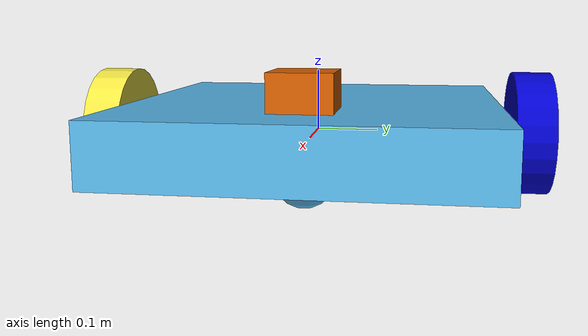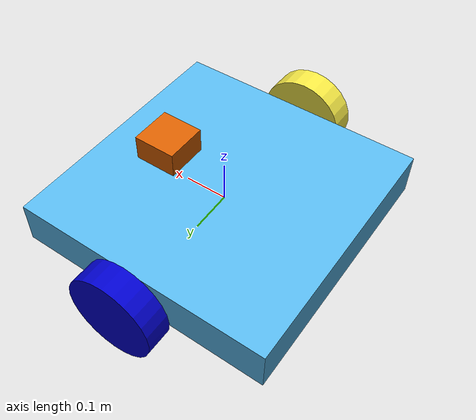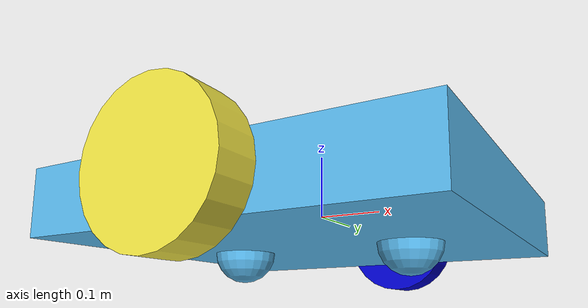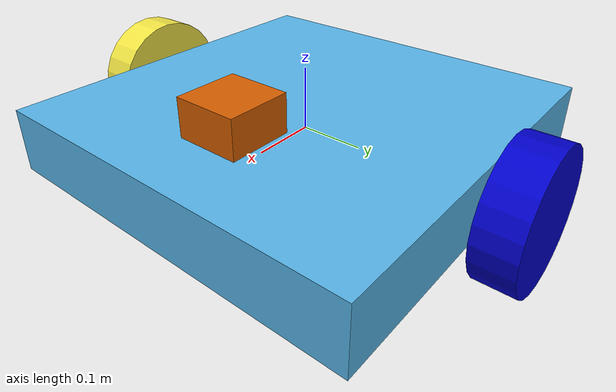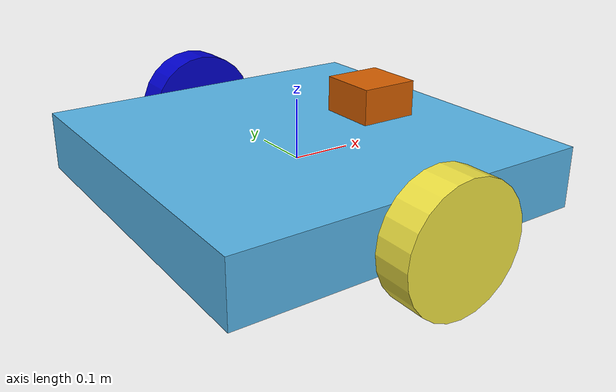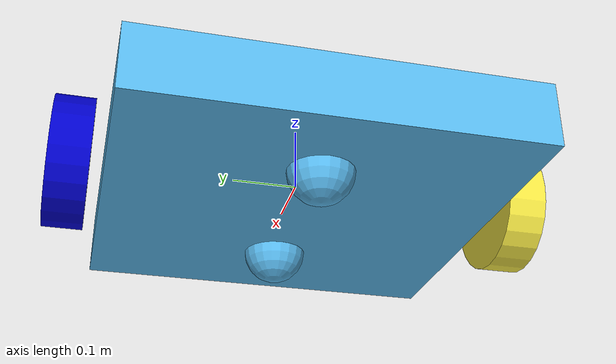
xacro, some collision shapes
<?xml version='1.0'?>

<robot name="my_robot" xmlns:xacro="http://www.ros.org/wiki/xacro">

  <xacro:include filename="$(find my_robot)/urdf/my_robot.gazebo" />
  <link name="robot_footprint"></link>

  <joint name="robot_footprint_joint" type="fixed">
    <origin xyz="0 0 0" rpy="0 0 0" />
    <parent link="robot_footprint"/>
    <child link="chassis" />
  </joint>

  <link name='chassis'>
    <pose>0 0 0.1 0 0 0</pose>

    <inertial>
      <mass value="10.0"/>
      <origin xyz="0.0 0 0" rpy=" 0 0 0"/>
      <inertia
          ixx="0.1" ixy="0" ixz="0"
          iyy="0.1" iyz="0"
          izz="0.1"
      />
    </inertial>

    <collision name='collision'>
      <origin xyz="0 0 0" rpy=" 0 0 0"/>
      <geometry>
        <box size=".6 .6 .1"/>
      </geometry>
    </collision>

    <visual name='chassis_visual'>
      <origin xyz="0 0 0" rpy=" 0 0 0"/>
      <geometry>
        <box size=".6 .6 .1"/>
      </geometry>
    </visual>

    <collision name='back_caster_collision'>
      <origin xyz="-0.15 0 -0.05" rpy=" 0 0 0"/>
      <geometry>
        <sphere radius="0.0499"/>
      </geometry>
    </collision>

    <visual name='back_caster_visual'>
      <origin xyz="-0.15 0 -0.05" rpy=" 0 0 0"/>
      <geometry>
        <sphere radius="0.05"/>
      </geometry>
    </visual>

    <collision name='front_caster_collision'>
      <origin xyz="0.15 0 -0.05" rpy=" 0 0 0"/>
      <geometry>
        <sphere radius="0.0499"/>
      </geometry>
    </collision>

    <visual name='front_caster_visual'>
      <origin xyz="0.15 0 -0.05" rpy=" 0 0 0"/>
      <geometry>
        <sphere radius="0.05"/>
      </geometry>
    </visual>

  </link>

  <link name='left_wheel'>
    <inertial>
      <mass value="2.0"/>
      <origin xyz="0.0 0.2 0" rpy=" 0 1.5707 1.5707"/>
      <inertia
          ixx="0.1" ixy="0" ixz="0"
          iyy="0.1" iyz="0"
          izz="0.1"
      />
    </inertial>

    <collision name='collision'>
      <origin xyz="0.0 0.2 0" rpy=" 0 1.5707 1.5707"/>
      <geometry>
        <cylinder radius="0.1" length="0.06"/>
      </geometry>
    </collision>

    <visual name='left_wheel_visual'>
      <origin xyz="0.0 0.2 0" rpy=" 0 1.5707 1.5707"/>
      <geometry>
        <cylinder radius="0.1" length="0.06"/>
      </geometry>
      <material name="blue">
          <color rgba="0.0 0.0 0.8 1.0"/>
      </material>
    </visual>
  </link>

  <joint type="continuous" name="left_wheel_hinge">
    <origin xyz="0 0.15 0" rpy=" 0 0 0"/>
    <child link="left_wheel"/>
    <parent link="chassis"/>
    <axis xyz="0 1 0" rpy=" 0 0 0"/>
    <limit effort="12000" velocity="1200"/>
    <dynamics damping="1.2" friction="1.2"/>
    <commandTopic>cmd_vel</commandTopic>
  </joint>

  <link name='right_wheel'>
    <inertial>
      <mass value="2.0"/>
      <origin xyz="0.0 -0.5 0" rpy=" 0 1.5707 1.5707"/>
      <inertia
          ixx="0.1" ixy="0" ixz="0"
          iyy="0.1" iyz="0"
          izz="0.1"
      />
    </inertial>

    <collision name='collision'>
      <origin xyz="0.0 -0.5 0" rpy=" 0 1.5707 1.5707"/>
      <geometry>
        <cylinder radius="0.1" length="0.06"/>
      </geometry>
    </collision>

    <visual name='right_wheel_visual'>
      <origin xyz="0.0 -0.5 0" rpy=" 0 1.5707 1.5707"/>
      <geometry>
        <cylinder radius="0.1" length="0.06"/>
      </geometry>
    </visual>
  </link>

  <joint type="continuous" name="right_wheel_hinge">
    <origin xyz="0 0.15 0" rpy=" 0 0 0"/>
    <child link="right_wheel"/>
    <parent link="chassis"/>
    <axis xyz="0 1 0" rpy=" 0 0 0"/>
    <limit effort="12000" velocity="1200"/>
    <dynamics damping="1.2" friction="1.2"/>
    <commandTopic>cmd_vel</commandTopic>
  </joint>

  <link name='camera'>
    <inertial>
      <mass value="0.12"/>
      <origin xyz="0.01 0 0" rpy=" 0 0 0"/>
      <inertia
          ixx="1e-6" ixy="0" ixz="0"
          iyy="1e-6" iyz="0"
          izz="1e-6"
      />
    </inertial>

    <collision name='collision'>
      <origin xyz="0.01 0 0" rpy=" 0 0 0"/>
      <geometry>
        <box size="0.05 0.05 0.05"/>
      </geometry>
    </collision>

    <visual name='camera_visual'>
      <origin xyz="0.01 0 0" rpy=" 0 0 0"/>
      <geometry>
        <box size="0.05 0.05 0.05"/>
      </geometry>
    </visual>
  </link>

  <joint type="fixed" name="camera_joint">
    <origin xyz="0.20 0 0" rpy=" 0 0 0"/>
    <child link="camera"/>
    <parent link="chassis"/>
    <axis xyz="0 1 0" rpy=" 0 0 0"/>
    <imageTopicName>rgb/image_raw</imageTopicName>
  </joint>

  <link name='hokuyo'>
    <inertial>
      <mass value="1e-5"/>
      <origin xyz="0.0 0 0" rpy=" 0 0 0"/>
      <inertia
          ixx="1e-6" ixy="0" ixz="0"
          iyy="1e-6" iyz="0"
          izz="1e-6"
      />
    </inertial>

    <collision name='collision'>
      <origin xyz="0.05 0 0.03" rpy=" 0 0 0"/>
      <geometry>
        <box size="0.1 0.1 0.1"/>
      </geometry>
    </collision>

    <visual name='camera_visual'>
      <origin xyz="0.05 0 0.03" rpy=" 0 0 0"/>
      <geometry>
        <mesh filename="package://my_robot/meshes/hokuyo.dae"/>
      </geometry>
    </visual>
  </link>

  <joint type="fixed" name="hokuyo_joint">
    <origin xyz="0.1 0 0.03" rpy=" 0 0 0"/>
    <child link="hokuyo"/>
    <parent link="chassis"/>
    <axis xyz="0 1 0" rpy=" 0 0 0"/>
    <topicName>/scan</topicName>
  </joint>

  <joint name="camera_optical_joint" type="fixed">
    <origin xyz="0 0 0" rpy="-1.5707 0 -1.5707"/>
    <parent link="camera"/>
    <child link="camera_link_optical"/>
  </joint>

  <link name="camera_link_optical">
  </link>
</robot>
